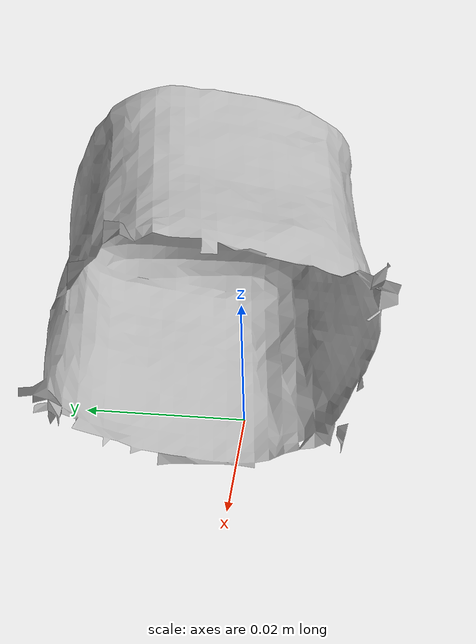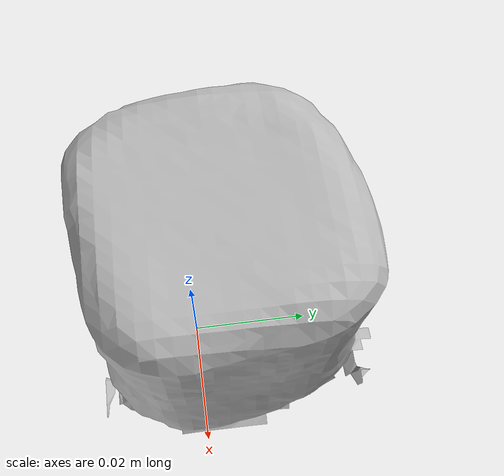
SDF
<?xml version='1.0'?>
<sdf version="1.4">
  <model name="j_lego_duplo">
    <static>false</static>
    <link name="link">
      <inertial>
        <pose>-0.0021151141598171976 0.004693648613480238 0.02532041738817613 -1.4729473698776174 -1.5010686150190196 1.5544267276959667</pose>
        <mass>4.6316286589237607e-05</mass>
        <inertia>
          <ixx>9.920232668398197e-09</ixx>
          <ixy>7.275534298754069e-25</ixy>
          <ixz>-1.4460311789673612e-25</ixz>
          <iyy>7.582023878987087e-09</iyy>
          <iyz>3.8720851740633405e-25</iyz>
          <izz>7.519936284613666e-09</izz>
        </inertia>
      </inertial>
      <collision name="collision">
        <geometry>
          <mesh>
            <!-- Use a downsampled mesh for collisions -->
            <uri>model://073-j_lego_duplo/downsampled.obj</uri>
	        </mesh>
        </geometry>
        <surface>
      </surface>
      </collision>
      <visual name="visual">
        <geometry>
          <mesh>
            <uri>model://073-j_lego_duplo/tsdf/textured.obj</uri>
	        </mesh>
        </geometry>
        <material>
          <script>
            <uri>model://073-j_lego_duplo/j_lego_duplo.material</uri>
            <name>j_lego_duplo</name>
          </script>
        </material>
      </visual>
    </link>
  </model>
</sdf>
